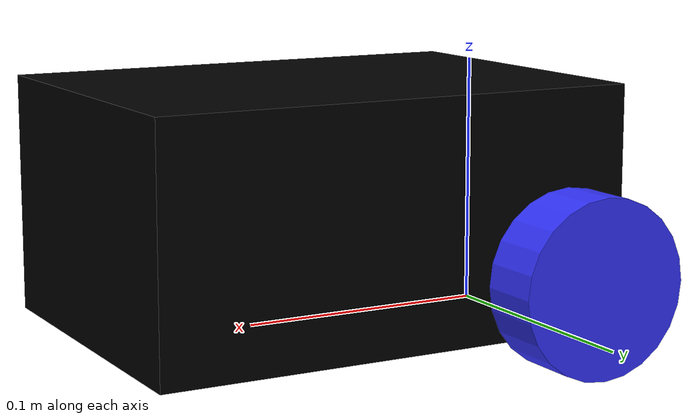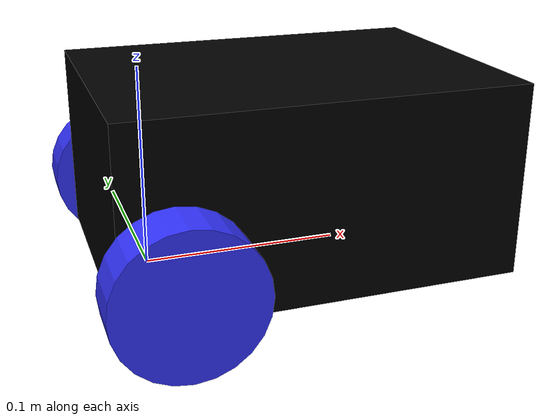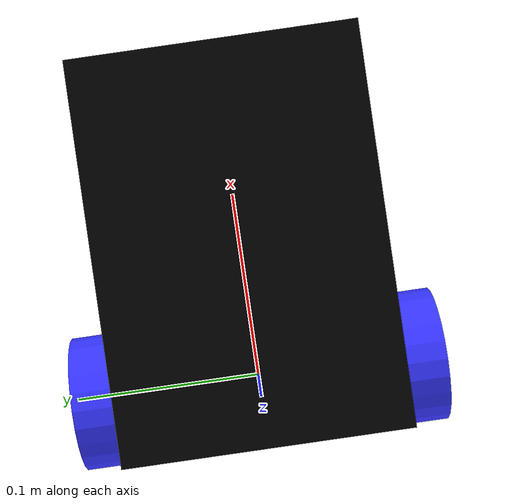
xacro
<?xml version="1.0"?>
<robot xmlns:xacro="http://www.ros.org/wiki/xacro"  name="robot">

    <xacro:arg name="use_ros2_control" default="true"/>
    <xacro:arg name="sim_mode" default="false"/>

    <xacro:include filename="robot_core.xacro" />

    <xacro:if value="$(arg use_ros2_control)">
        <xacro:include filename="ros2_control.xacro" />
    </xacro:if>
    <xacro:unless value="$(arg use_ros2_control)">
        <xacro:include filename="gazebo_control.xacro" />
    </xacro:unless>

</robot>

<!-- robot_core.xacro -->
<robot xmlns:xacro="http://www.ros.org/wiki/xacro" >

    <xacro:include filename="inertial_macros.xacro"/>

    <material name="white">
        <color rgba="1 1 1 1" />
    </material>

    <material name="orange">
        <color rgba="1 0.3 0.1 1" />
    </material>

    <material name="blue">
        <color rgba="0.2 0.2 1 1" />
    </material>

    <material name="black">
        <color rgba="0 0 0 1" />
    </material>

    <material name="red">
        <color rgba="1 0.2 0.2 1" />
    </material>

    <!-- BASE LINK -->

    <link name="base_link">

    </link>

    <!-- BASE_FOOTPRINT LINK -->

    <joint name="base_footprint_joint" type="fixed">
        <parent link="base_link"/>
        <child link="base_footprint"/>
        <origin xyz="0 0 0" rpy="0 0 0"/>
    </joint>

    <link name="base_footprint">
    </link>

    <!-- CHASSIS LINK -->

    <joint name="chassis_joint" type="fixed">
        <parent link="base_link" />
        <child link="chassis_link"/>
        <origin xyz="-0.0254 0 0"/>
    </joint>

    <link name="chassis_link">
        <visual>
            <origin xyz="0.0968375 0 0.047625"/>
            <geometry>
                <box size="0.193675 0.1397 0.09525"/>
            </geometry>
            <material name="black"/>
        </visual>
        <collision>
            <origin xyz="0.0968375 0 0.047625"/>
            <geometry>
                <box size="0.193675 0.1397 0.09525"/>
            </geometry>
        </collision>
        <xacro:inertial_box mass="0.5" x="0.193675" y="0.1397" z="0.09525">
            <origin xyz="0.0968375 0 0.047625" rpy="0 0 0"/>
        </xacro:inertial_box>
    </link>

    <gazebo reference="chassis_link">
        <material>Gazebo/Black</material>
    </gazebo>

    <!-- LEFT WHEEL LINK -->

    <joint name="left_wheel_joint" type="continuous">
        <parent link="base_link"/>
        <child link="left_wheel_link"/>
        <origin xyz="0 0.08255 0.022225" rpy="-${pi/2} 0 0"/>
        <axis xyz="0 0 1"/>
    </joint>

    <link name="left_wheel_link">
        <visual>
            <geometry>
                <cylinder radius="0.035" length="0.0254"/>
            </geometry>
            <material name="blue"/>
        </visual>
        <collision>
            <geometry>
                <sphere radius="0.035"/>
            </geometry>
        </collision>
        <xacro:inertial_cylinder mass="0.1" length="0.0254" radius="0.035">
            <origin xyz="0 0 0" rpy="0 0 0"/>
        </xacro:inertial_cylinder>
    </link>

    <gazebo reference="left_wheel_link">
        <material>Gazebo/Blue</material>
    </gazebo>

    <!-- RIGHT WHEEL LINK -->

    <joint name="right_wheel_joint" type="continuous">
        <parent link="base_link"/>
        <child link="right_wheel_link"/>
        <origin xyz="0 -0.08255 0.022225" rpy="${pi/2} 0 0"/>
        <axis xyz="0 0 -1"/>
    </joint>

    <link name="right_wheel_link">
        <visual>
            <geometry>
                <cylinder radius="0.035" length="0.0254"/>
            </geometry>
            <material name="blue"/>
        </visual>
        <collision>
            <geometry>
                <sphere radius="0.035"/>
            </geometry>
        </collision>
        <xacro:inertial_cylinder mass="0.1" length="0.0254" radius="0.035">
            <origin xyz="0 0 0" rpy="0 0 0"/>
        </xacro:inertial_cylinder>
    </link>

    <gazebo reference="right_wheel_link">
        <material>Gazebo/Blue</material>
    </gazebo>

    <!-- CASTER WHEEL LINK -->

    <joint name="caster_wheel_joint" type="fixed">
        <parent link="chassis_link"/>
        <child link="caster_wheel_link"/>
        <origin xyz="0.14 0 0.022225"/>
    </joint>

    <link name="caster_wheel_link">
        <visual>
            <geometry>
                <sphere radius="0.034"/>
            </geometry>
            <material name="black"/>
        </visual>
        <collision>
            <geometry>
                <sphere radius="0.034"/>
            </geometry>
        </collision>
        <xacro:inertial_sphere mass="0.1" radius="0.034">
            <origin xyz="0 0 0" rpy="0 0 0"/>
        </xacro:inertial_sphere>
    </link>

    <gazebo reference="caster_wheel_link">
        <material>Gazebo/Black</material>
        <mu1 value="0.001"/>
        <mu2 value="0.001"/>
    </gazebo>

</robot>
